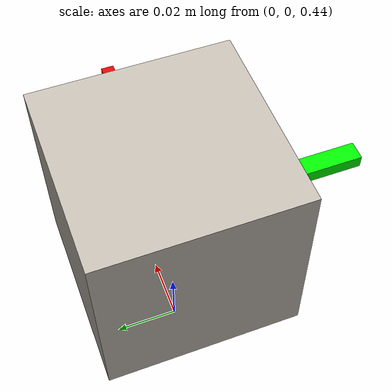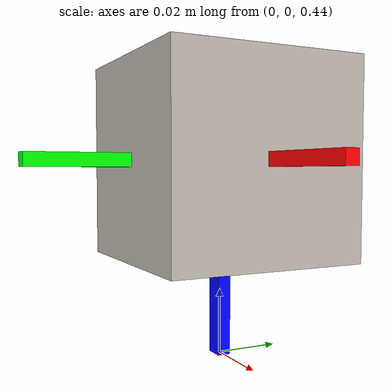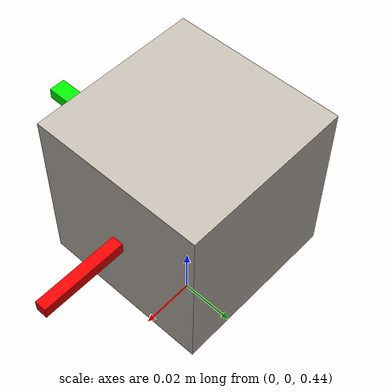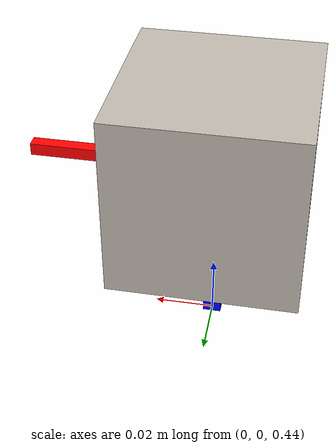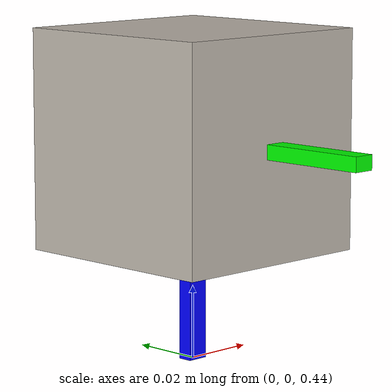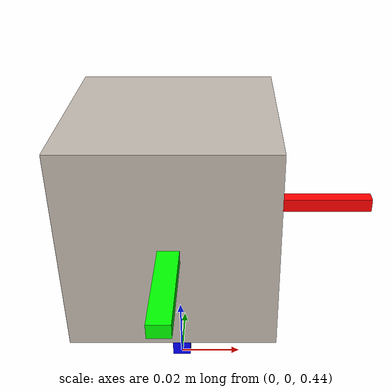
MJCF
<mujoco model="reorientation_cube">
  <asset>
    <texture name="cube" type="cube"
             fileup="../textures/fileup.png"
             fileback="../textures/fileback.png"
             filedown="../textures/filedown.png"
             filefront="../textures/filefront.png"
             fileleft="../textures/fileleft.png"
             fileright="../textures/fileright.png"/>
    <material name="cube" texture="cube"/>
    <texture name="graycube" type="cube"
            fileup="../textures/grayup.png"
             fileback="../textures/grayback.png"
             filedown="../textures/graydown.png"
             filefront="../textures/grayfront.png"
             fileleft="../textures/grayleft.png"
             fileright="../textures/grayright.png"/>
    <material name="graycube" texture="graycube"/>
    <!-- simple colored materials for axis visualization -->
    <material name="red" rgba="1 0 0 1"/>
    <material name="green" rgba="0 1 0 1"/>
    <material name="blue" rgba="0 0 1 1"/>
  </asset>
  <option timestep="0.0025" gravity="0 0 0"/>

  <worldbody>
    <light pos="0 0 1"/>
    <body name="cube" pos="0.0 0.0 0.5" quat="0 1 0 0">
      <freejoint/>
      <!-- main cube -->
      <geom name="cube" type="box" size=".03 .03 .03" mass=".122" material="cube"
            priority="0" friction="0.05 0.0001 0.0001"/>

      <!-- visualization axes (rotate with cube) -->
      <!-- X axis: red -->
      <geom name="axis_x" type="box" size=".03 .002 .002" pos=".03 0 0" material="red" contype="0" conaffinity="0" density="0"/>
      <!-- Y axis: green -->
      <geom name="axis_y" type="box" size=".003 .03 .002" pos="0 .03 0" material="green" contype="0" conaffinity="0" density="0"/>
      <!-- Z axis: blue -->
      <geom name="axis_z" type="box" size=".003 .002 .03" pos="0 0 .03" material="blue" contype="0" conaffinity="0" density="0"/>
    </body>
  </worldbody>

  <sensor>
      <framepos name="cube_position" objtype="body" objname="cube"/>
      <framequat name="cube_orientation" objtype="body" objname="cube"/>
      <framelinvel name="cube_linear_velocity" objtype="body" objname="cube"/>
      <frameangvel name="cube_angular_velocity" objtype="body" objname="cube"/>
  </sensor>
</mujoco>
